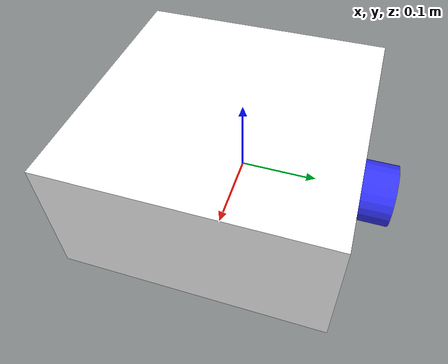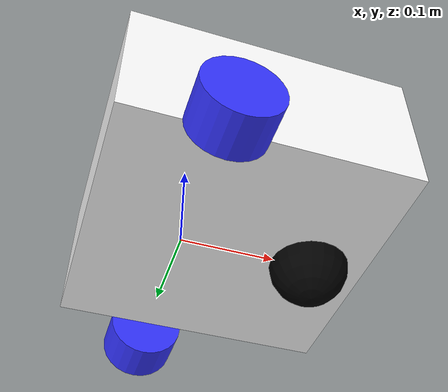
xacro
<?xml version="1.0"?>
<robot xmlns:xacro="http://www.ros.org/wiki/xacro" >

    <xacro:include filename="inertial_macros.xacro" />

    <material name="white">
        <color rgba="1 1 1 1"/>
    </material>

    <material name="orange">
        <color rgba="1 0.3 0.1 1"/>
    </material>

    <material name="blue">
        <color rgba="0.2 0.2 1 1"/>
    </material>

    <material name="black">
        <color rgba="0 0 0 1"/>
    </material>

    <material name="red">
        <color rgba="1 0 0 1"/>
    </material>

    <link name="base_link">
    </link>

    <joint name="chassis_joint" type="fixed">
        <parent link="base_link"/>
        <child link="chassis"/>
        <origin xyz="-0.1 0 0"/>
    </joint>

    <link name="chassis">
        <visual>
            <origin xyz="0.15 0 0.075" rpy="0 0 0"/>
            <geometry>
                <box size="0.3 0.3 0.15"/>
            </geometry>
            <material name="white"/>
        </visual>
        <collision>
            <origin xyz="0.15 0 0.075" rpy="0 0 0"/>
            <geometry>
                <box size="0.3 0.3 0.15"/>
            </geometry>
            <material name="white"/>
        </collision>

        <xacro:inertial_box mass="0.5" x="0.3" y="0.3" z="0.15">
            <origin xyz="0.15 0 0.075" rpy="0 0 0"/>
        </xacro:inertial_box>
    </link>
    <gazebo reference="chassis">
        <material>Gazebo/Orange</material>
    </gazebo>

    <!-- LEFT WHEEL -->

    <joint name="left_wheel_joint" type="continuous">
        <parent link="base_link"/>
        <child link="left_wheel"/>
        <origin xyz="0 0.175 0" rpy="-${pi/2} 0 0"/>
        <axis xyz="0 0 1"/>
    </joint>

    <link name="left_wheel">
        <visual>
            <geometry>
                <cylinder length="0.05" radius="0.04" />
            </geometry>
            <material name="blue"/>
        </visual>
        <collision>
            <geometry>
                <cylinder length="0.05" radius="0.04" />
            </geometry>
            <material name="blue"/>
        </collision>
        <xacro:inertial_cylinder mass="0.1" length="0.04" radius="0.04">
            <origin xyz="0 0 0" rpy="0 0 0"/>
        </xacro:inertial_cylinder>
    </link>

    <gazebo reference="left_wheel">
        <material>Gazebo/Blue</material>
    </gazebo>

    <!-- RIGHT WHEEL -->

    <joint name="right_wheel_joint" type="continuous">
        <parent link="base_link"/>
        <child link="right_wheel"/>
        <origin xyz="0 -0.175 0" rpy="${pi/2} 0 0"/>
        <axis xyz="0 0 -1"/>
    </joint>

    <link name="right_wheel">
        <visual>
            <geometry>
                <cylinder length="0.05" radius="0.04" />
            </geometry>
            <material name="blue"/>
        </visual>
        <collision>
            <geometry>
                <cylinder length="0.05" radius="0.04" />
            </geometry>
            <material name="blue"/>
        </collision>
        <xacro:inertial_cylinder mass="0.1" length="0.04" radius="0.04">
            <origin xyz="0 0 0" rpy="0 0 0"/>
        </xacro:inertial_cylinder>
    </link>
    <gazebo reference="right_wheel">
        <material>Gazebo/Blue</material>
    </gazebo>

    <!-- CASTER WHEEL -->

    <joint name="caster_wheel_joint" type="fixed">
        <parent link="chassis"/>
        <child link="caster_wheel"/>
        <origin xyz="0.24 0 0" rpy="0 0 0"/>
    </joint>

    <link name="caster_wheel">
        <visual>
            <geometry>
                <sphere radius="0.042" />
            </geometry>
            <material name="black"/>
        </visual>
        <collision>
            <geometry>
                <sphere radius="0.042" />
            </geometry>
            <material name="black"/>
        </collision>
        <xacro:inertial_sphere mass="0.1" radius="0.042">
            <origin xyz="0 0 0" rpy="0 0 0"/>
        </xacro:inertial_sphere>
    </link>

    <gazebo reference="caster_wheel">
    <material>Gazebo/Black</material>
    <mu1 value="0.001"/>
    <mu2 value="0.001"/>
</gazebo>

</robot>
